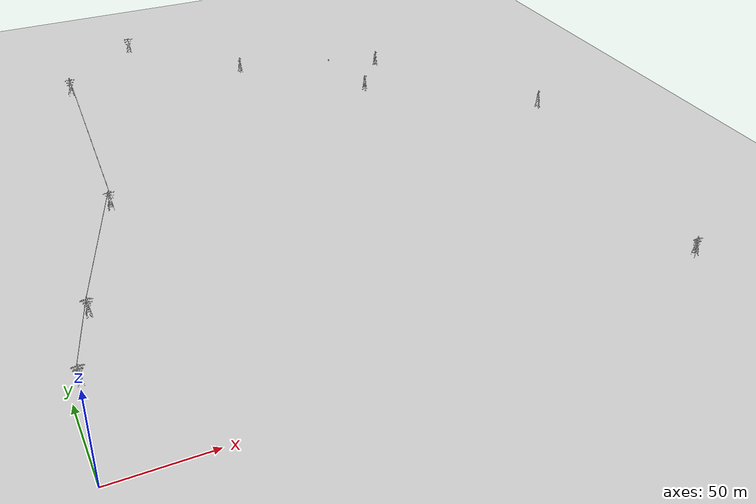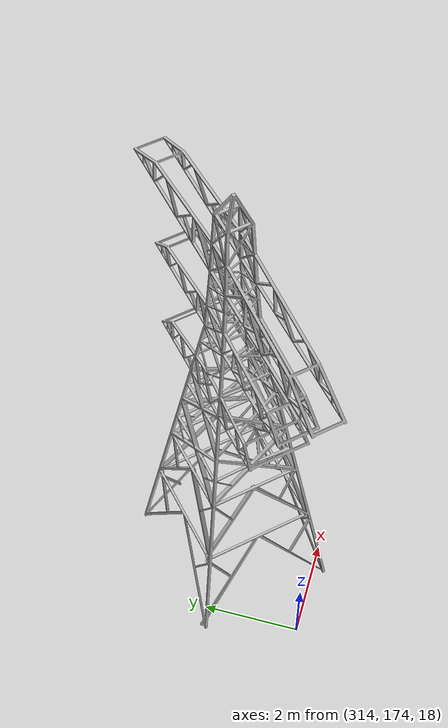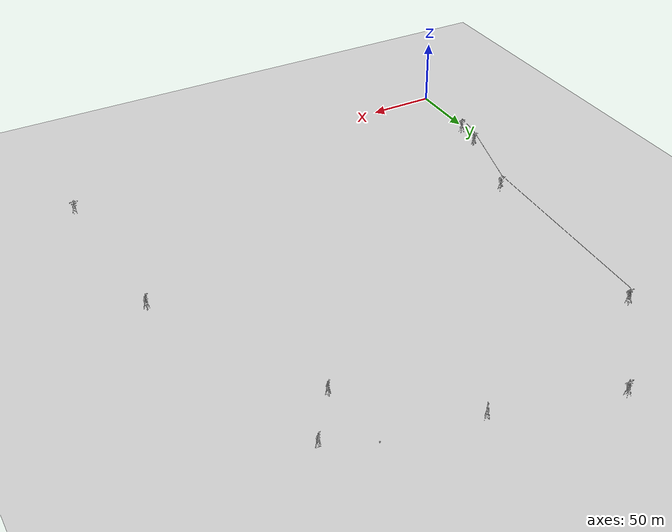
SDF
<sdf version="1.7">
 <world name="default">
  <light name="sun" type="directional">
   <pose>0 0 10 0 -0 0</pose>
   <diffuse>0.8 0.8 0.8 1</diffuse>
   <specular>0.2 0.2 0.2 1</specular>
   <attenuation>
    <range>1000</range>
    <constant>0.9</constant>
    <linear>0.01</linear>
    <quadratic>0.001</quadratic>
   </attenuation>
   <direction>-0.5 0.1 -0.9</direction>
   <spot><inner_angle>0</inner_angle><outer_angle>0</outer_angle><falloff>0</falloff></spot>
  </light>
  <model name="ground_plane">
   <static>1</static>
   <link name="link">
    <collision name="collision">
     <geometry><plane><normal>0 0 1</normal><size>100 100</size></plane></geometry>
     <surface><friction><ode><mu>100</mu><mu2>50</mu2></ode></friction></surface>
    </collision>
    <visual name="visual">
     <cast_shadows>0</cast_shadows>
     <geometry><plane><normal>0 0 1</normal><size>100 100</size></plane></geometry>
     <material>
      <script><uri>file://media/materials/scripts/gazebo.material</uri><name>Gazebo/Grey</name></script>
     </material>
    </visual>
   </link>
  </model>
  <gravity>0 0 -9.8</gravity>
  <magnetic_field>6e-06 2.3e-05 -4.2e-05</magnetic_field>
  <atmosphere type="adiabatic"/>
  <physics type="ode">
   <max_step_size>0.001</max_step_size>
   <real_time_factor>1</real_time_factor>
   <real_time_update_rate>1000</real_time_update_rate>
  </physics>
  <scene><ambient>0.4 0.4 0.4 1</ambient><background>0.7 0.7 0.7 1</background><shadows>1</shadows></scene>
  <spherical_coordinates>
   <surface_model>EARTH_WGS84</surface_model>
   <latitude_deg>0</latitude_deg>
   <longitude_deg>0</longitude_deg>
   <elevation>0</elevation>
   <heading_deg>0</heading_deg>
  </spherical_coordinates>
  <model name="torrona">
   <static>1</static>
   <link name="link">
    <collision name="collision">
     <geometry><mesh><scale>0.1 0.1 0.1</scale><uri>model://torrona/meshes/torrona.stl</uri></mesh></geometry>
    </collision>
    <visual name="visual">
     <geometry><mesh><scale>0.1 0.1 0.1</scale><uri>model://torrona/meshes/torrona.stl</uri></mesh></geometry>
    </visual>
   </link>
   <pose>4.23252 59.6332 0 0 -0 0</pose>
  </model>
  <model name="torrona_0">
   <static>1</static>
   <link name="link">
    <collision name="collision">
     <geometry><mesh><scale>0.1 0.1 0.1</scale><uri>model://torrona/meshes/torrona.stl</uri></mesh></geometry>
    </collision>
    <visual name="visual">
     <geometry><mesh><scale>0.1 0.1 0.1</scale><uri>model://torrona/meshes/torrona.stl</uri></mesh></geometry>
    </visual>
   </link>
   <pose>16.611 93.7986 8.23703 0 -0 0</pose>
  </model>
  <model name="torre_7">
   <include><uri>model://torrona</uri><pose>270 310.103 -1.49265 0 -0 0.758788</pose></include>
  </model>
  <model name="torre_8">
   <include><uri>model://torrona</uri><pose>315.671 173.776 17.5701 0 -0 0.736076</pose></include>
  </model>
  <model name="torrona_1">
   <static>1</static>
   <link name="link">
    <collision name="collision">
     <geometry><mesh><scale>0.1 0.1 0.1</scale><uri>model://torrona/meshes/torrona.stl</uri></mesh></geometry>
    </collision>
    <visual name="visual">
     <geometry><mesh><scale>0.1 0.1 0.1</scale><uri>model://torrona/meshes/torrona.stl</uri></mesh></geometry>
    </visual>
   </link>
   <pose>45.065 167.192 17.4338 0 -0 0</pose>
  </model>
  <model name="torrona_2">
   <static>1</static>
   <link name="link">
    <collision name="collision">
     <geometry><mesh><scale>0.1 0.1 0.1</scale><uri>model://torrona/meshes/torrona.stl</uri></mesh></geometry>
    </collision>
    <visual name="visual">
     <geometry><mesh><scale>0.1 0.1 0.1</scale><uri>model://torrona/meshes/torrona.stl</uri></mesh></geometry>
    </visual>
   </link>
   <pose>53.7558 311.953 18.269 0 -0 0</pose>
  </model>
  <model name="torrona_3">
   <static>1</static>
   <link name="link">
    <collision name="collision">
     <geometry><mesh><scale>0.1 0.1 0.1</scale><uri>model://torrona/meshes/torrona.stl</uri></mesh></geometry>
    </collision>
    <visual name="visual">
     <geometry><mesh><scale>0.1 0.1 0.1</scale><uri>model://torrona/meshes/torrona.stl</uri></mesh></geometry>
    </visual>
   </link>
   <pose>105.613 371.682 14.3516 0 -0 0</pose>
  </model>
  <model name="torrona_4">
   <static>1</static>
   <link name="link">
    <collision name="collision">
     <geometry><mesh><scale>0.1 0.1 0.1</scale><uri>model://torrona/meshes/torrona.stl</uri></mesh></geometry>
    </collision>
    <visual name="visual">
     <geometry><mesh><scale>0.1 0.1 0.1</scale><uri>model://torrona/meshes/torrona.stl</uri></mesh></geometry>
    </visual>
   </link>
   <pose>177.09 336.784 0 0 -0 0.949565</pose>
  </model>
  <model name="torrona_5">
   <static>1</static>
   <link name="link">
    <collision name="collision">
     <geometry><mesh><scale>0.1 0.1 0.1</scale><uri>model://torrona/meshes/torrona.stl</uri></mesh></geometry>
    </collision>
    <visual name="visual">
     <geometry><mesh><scale>0.1 0.1 0.1</scale><uri>model://torrona/meshes/torrona.stl</uri></mesh></geometry>
    </visual>
   </link>
   <pose>245.478 276.103 -1.49265 0 -0 0.758788</pose>
  </model>
  <model name="torrona_6">
   <static>1</static>
   <link name="link">
    <collision name="collision">
     <geometry><mesh><scale>0.1 0.1 0.1</scale><uri>model://torrona/meshes/torrona.stl</uri></mesh></geometry>
    </collision>
    <visual name="visual">
     <geometry><mesh><scale>0.1 0.1 0.1</scale><uri>model://torrona/meshes/torrona.stl</uri></mesh></geometry>
    </visual>
   </link>
   <pose>315.671 173.776 17.5701 0 -0 0.736076</pose>
  </model>
  <model name="torrona_7">
   <static>1</static>
   <link name="link">
    <collision name="collision">
     <geometry><mesh><scale>0.1 0.1 0.1</scale><uri>model://torrona/meshes/torrona.stl</uri></mesh></geometry>
    </collision>
    <visual name="visual">
     <geometry><mesh><scale>0.1 0.1 0.1</scale><uri>model://torrona/meshes/torrona.stl</uri></mesh></geometry>
    </visual>
   </link>
   <pose>313.757 25.5239 0 0 -0 0</pose>
  </model>
  <model name="abccd">
   <pose>11.8808 78.2072 16.2192 -0 -1.35 -1.92</pose>
   <static>1</static>
   <link name="link">
    <visual name="visual">
     <geometry><cylinder><radius>0.1</radius><length>37.32</length></cylinder></geometry>
     <material>
      <script><name>Gazebo/Grey</name><uri>file://media/materials/scripts/gazebo.material</uri></script>
     </material>
    </visual>
    <collision name="collision">
     <geometry><cylinder><radius>0.1</radius><length>37.32</length></cylinder></geometry>
    </collision>
    <inertial>
     <inertia><ixx>1</ixx><ixy>0</ixy><ixz>0</ixz><iyy>1</iyy><iyz>0</iyz><izz>1</izz></inertia>
     <mass>1</mass>
    </inertial>
   </link>
  </model>
  <model name="abccdscds">
   <pose>32.3032 131.974 24.9399 0 -1.45 -1.94</pose>
   <static>1</static>
   <link name="link">
    <visual name="visual">
     <geometry><cylinder><radius>0.1</radius><length>79.16</length></cylinder></geometry>
     <material>
      <script><name>Gazebo/Grey</name><uri>file://media/materials/scripts/gazebo.material</uri></script>
     </material>
    </visual>
    <collision name="collision">
     <geometry><cylinder><radius>0.1</radius><length>79.16</length></cylinder></geometry>
    </collision>
    <inertial>
     <inertia><ixx>1</ixx><ixy>0</ixy><ixz>0</ixz><iyy>1</iyy><iyz>0</iyz><izz>1</izz></inertia>
     <mass>1</mass>
    </inertial>
   </link>
  </model>
  <model name="resd">
   <pose>50.8695 241.04 30.016 -3.14159 -1.5649 -1.63061</pose>
   <static>1</static>
   <link name="link">
    <visual name="visual">
     <geometry><cylinder><radius>0.1</radius><length>145.113</length></cylinder></geometry>
     <material>
      <script><name>Gazebo/Grey</name><uri>file://media/materials/scripts/gazebo.material</uri></script>
     </material>
    </visual>
    <collision name="collision">
     <geometry><cylinder><radius>0.1</radius><length>145.113</length></cylinder></geometry>
    </collision>
    <inertial>
     <inertia><ixx>1</ixx><ixy>0</ixy><ixz>0</ixz><iyy>1</iyy><iyz>0</iyz><izz>1</izz></inertia>
     <mass>1</mass>
    </inertial>
   </link>
  </model>
  <model name="unit_sphere">
   <pose>240.28 327.853 2.91659 -0.011538 -0.002189 -0.002732</pose>
   <link name="link">
    <inertial>
     <mass>1</mass>
     <inertia><ixx>0.1</ixx><ixy>0</ixy><ixz>0</ixz><iyy>0.1</iyy><iyz>0</iyz><izz>0.1</izz></inertia>
    </inertial>
    <collision name="collision"><geometry><sphere><radius>0.5</radius></sphere></geometry></collision>
    <visual name="visual">
     <geometry><sphere><radius>0.5</radius></sphere></geometry>
     <material>
      <script><name>Gazebo/Grey</name><uri>file://media/materials/scripts/gazebo.material</uri></script>
     </material>
    </visual>
   </link>
  </model>
 </world>
</sdf>

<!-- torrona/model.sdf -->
<sdf version="1.6">
  <model name="torrona">
    <static>true</static>
    <link name="link">
      <collision name="collision">
        <geometry>
          <mesh>
            <scale>0.1 0.1 0.1</scale>
            <uri>model://torrona/meshes/torrona.stl</uri>
          </mesh>
        </geometry>
      </collision>

      <visual name="visual">
        <geometry>
          <mesh>
            <scale>0.1 0.1 0.1</scale>
            <uri>model://torrona/meshes/torrona.stl</uri>
          </mesh>
        </geometry>
      </visual>
    </link>
  </model>
</sdf>
